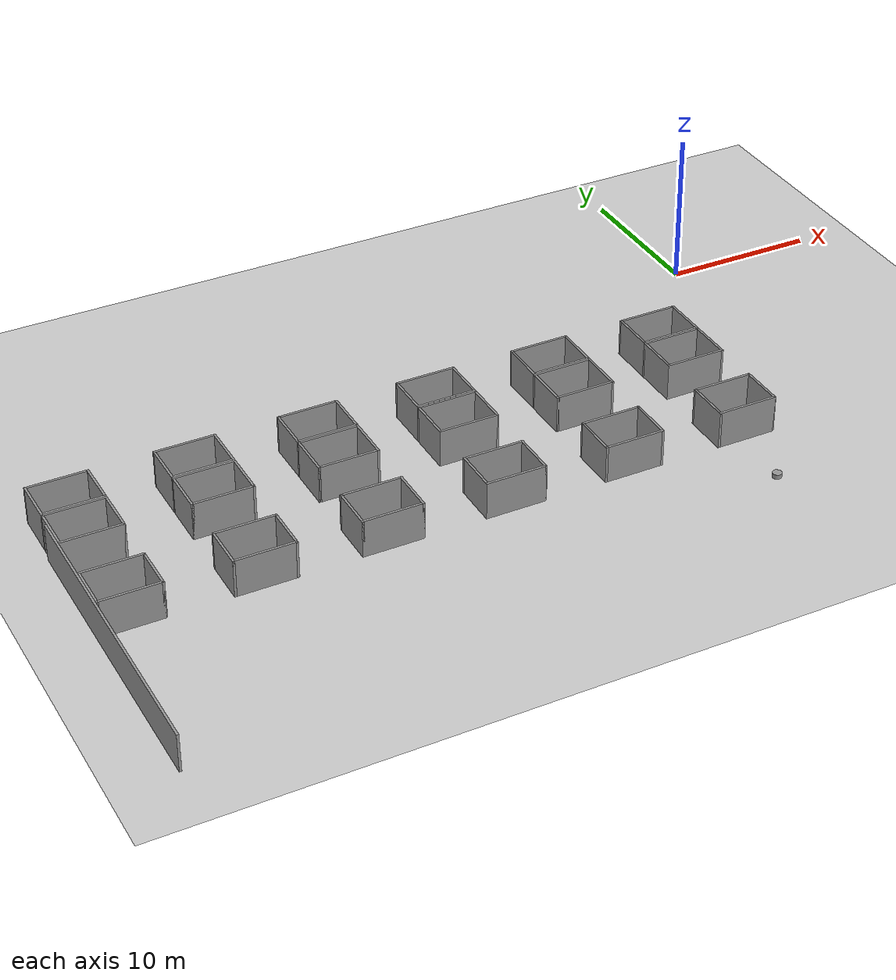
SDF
<sdf version="1.6">
 <world name="default">
  <model name="ground_plane">
   <static>1</static>
   <link name="link">
    <collision name="collision">
     <geometry><plane><normal>0 0 1</normal><size>105 105</size></plane></geometry>
     <surface>
      <contact><collide_bitmask>65535</collide_bitmask></contact>
      <friction><ode><mu>100</mu><mu2>50</mu2></ode></friction>
     </surface>
    </collision>
    <visual name="visual">
     <cast_shadows>0</cast_shadows>
     <geometry><plane><normal>0 0 1</normal><size>105 105</size></plane></geometry>
     <material>
      <script><uri>file://media/materials/scripts/gazebo.material</uri><name>Gazebo/Grey</name></script>
     </material>
    </visual>
   </link>
  </model>
  <model name="wall_v20m">
   <pose>-48.4198 -20.7165 0 0 -0 0</pose>
   <link name="Wall_35">
    <collision name="Wall_35_Collision">
     <geometry><box><size>20 0.15 2.5</size></box></geometry>
     <pose>0 0 1.25 0 -0 0</pose>
    </collision>
    <visual name="Wall_35_Visual">
     <pose>0 0 1.25 0 -0 0</pose>
     <geometry><box><size>20 0.15 2.5</size></box></geometry>
     <material>
      <script><uri>file://media/materials/scripts/gazebo.material</uri><name>Gazebo/Grey</name></script>
      <ambient>1 1 1 1</ambient>
     </material>
     <meta><layer>0</layer></meta>
    </visual>
    <pose>0 -0 0 0 -0 -1.5708</pose>
   </link>
   <static>1</static>
  </model>
  <model name="base3x4_28">
   <pose>-46.3508 -17.215 0 0 -0 0</pose>
   <link name="Wall_18">
    <collision name="Wall_18_Collision">
     <geometry><box><size>3 0.15 2.5</size></box></geometry>
     <pose>0 0 1.25 0 -0 0</pose>
    </collision>
    <visual name="Wall_18_Visual">
     <pose>0 0 1.25 0 -0 0</pose>
     <geometry><box><size>3 0.15 2.5</size></box></geometry>
     <material>
      <script><uri>file://media/materials/scripts/gazebo.material</uri><name>Gazebo/Grey</name></script>
      <ambient>1 1 1 1</ambient>
     </material>
     <meta><layer>0</layer></meta>
    </visual>
    <pose>-1.925 -0 0 0 -0 -1.5708</pose>
   </link>
   <link name="Wall_19">
    <collision name="Wall_19_Collision">
     <geometry><box><size>4 0.15 2.5</size></box></geometry>
     <pose>0 0 1.25 0 -0 0</pose>
    </collision>
    <visual name="Wall_19_Visual">
     <pose>0 0 1.25 0 -0 0</pose>
     <geometry><box><size>4 0.15 2.5</size></box></geometry>
     <material>
      <script><uri>file://media/materials/scripts/gazebo.material</uri><name>Gazebo/Grey</name></script>
      <ambient>1 1 1 1</ambient>
     </material>
     <meta><layer>0</layer></meta>
    </visual>
    <pose>-0 -1.425 0 0 -0 0</pose>
   </link>
   <link name="Wall_20">
    <collision name="Wall_20_Collision">
     <geometry><box><size>3 0.15 2.5</size></box></geometry>
     <pose>0 0 1.25 0 -0 0</pose>
    </collision>
    <visual name="Wall_20_Visual">
     <pose>0 0 1.25 0 -0 0</pose>
     <geometry><box><size>3 0.15 2.5</size></box></geometry>
     <material>
      <script><uri>file://media/materials/scripts/gazebo.material</uri><name>Gazebo/Grey</name></script>
      <ambient>1 1 1 1</ambient>
     </material>
     <meta><layer>0</layer></meta>
    </visual>
    <pose>1.925 -0 0 0 -0 1.5708</pose>
   </link>
   <link name="Wall_21">
    <collision name="Wall_21_Collision">
     <geometry><box><size>4 0.15 2.5</size></box></geometry>
     <pose>0 0 1.25 0 -0 0</pose>
    </collision>
    <visual name="Wall_21_Visual">
     <pose>0 0 1.25 0 -0 0</pose>
     <geometry><box><size>4 0.15 2.5</size></box></geometry>
     <material>
      <script><uri>file://media/materials/scripts/gazebo.material</uri><name>Gazebo/Grey</name></script>
      <ambient>1 1 1 1</ambient>
     </material>
     <meta><layer>0</layer></meta>
    </visual>
    <pose>-0 1.425 0 0 -0 3.14159</pose>
   </link>
   <static>1</static>
  </model>
  <model name="base3x4_36">
   <pose>-38.357 -17.2543 0 0 -0 0</pose>
   <link name="Wall_18">
    <collision name="Wall_18_Collision">
     <geometry><box><size>3 0.15 2.5</size></box></geometry>
     <pose>0 0 1.25 0 -0 0</pose>
    </collision>
    <visual name="Wall_18_Visual">
     <pose>0 0 1.25 0 -0 0</pose>
     <geometry><box><size>3 0.15 2.5</size></box></geometry>
     <material>
      <script><uri>file://media/materials/scripts/gazebo.material</uri><name>Gazebo/Grey</name></script>
      <ambient>1 1 1 1</ambient>
     </material>
     <meta><layer>0</layer></meta>
    </visual>
    <pose>-1.925 -0 0 0 -0 -1.5708</pose>
   </link>
   <link name="Wall_19">
    <collision name="Wall_19_Collision">
     <geometry><box><size>4 0.15 2.5</size></box></geometry>
     <pose>0 0 1.25 0 -0 0</pose>
    </collision>
    <visual name="Wall_19_Visual">
     <pose>0 0 1.25 0 -0 0</pose>
     <geometry><box><size>4 0.15 2.5</size></box></geometry>
     <material>
      <script><uri>file://media/materials/scripts/gazebo.material</uri><name>Gazebo/Grey</name></script>
      <ambient>1 1 1 1</ambient>
     </material>
     <meta><layer>0</layer></meta>
    </visual>
    <pose>-0 -1.425 0 0 -0 0</pose>
   </link>
   <link name="Wall_20">
    <collision name="Wall_20_Collision">
     <geometry><box><size>3 0.15 2.5</size></box></geometry>
     <pose>0 0 1.25 0 -0 0</pose>
    </collision>
    <visual name="Wall_20_Visual">
     <pose>0 0 1.25 0 -0 0</pose>
     <geometry><box><size>3 0.15 2.5</size></box></geometry>
     <material>
      <script><uri>file://media/materials/scripts/gazebo.material</uri><name>Gazebo/Grey</name></script>
      <ambient>1 1 1 1</ambient>
     </material>
     <meta><layer>0</layer></meta>
    </visual>
    <pose>1.925 -0 0 0 -0 1.5708</pose>
   </link>
   <link name="Wall_21">
    <collision name="Wall_21_Collision">
     <geometry><box><size>4 0.15 2.5</size></box></geometry>
     <pose>0 0 1.25 0 -0 0</pose>
    </collision>
    <visual name="Wall_21_Visual">
     <pose>0 0 1.25 0 -0 0</pose>
     <geometry><box><size>4 0.15 2.5</size></box></geometry>
     <material>
      <script><uri>file://media/materials/scripts/gazebo.material</uri><name>Gazebo/Grey</name></script>
      <ambient>1 1 1 1</ambient>
     </material>
     <meta><layer>0</layer></meta>
    </visual>
    <pose>-0 1.425 0 0 -0 3.14159</pose>
   </link>
   <static>1</static>
  </model>
  <model name="base3x4_33">
   <pose>-30.4092 -17.2319 0 0 -0 0</pose>
   <link name="Wall_18">
    <collision name="Wall_18_Collision">
     <geometry><box><size>3 0.15 2.5</size></box></geometry>
     <pose>0 0 1.25 0 -0 0</pose>
    </collision>
    <visual name="Wall_18_Visual">
     <pose>0 0 1.25 0 -0 0</pose>
     <geometry><box><size>3 0.15 2.5</size></box></geometry>
     <material>
      <script><uri>file://media/materials/scripts/gazebo.material</uri><name>Gazebo/Grey</name></script>
      <ambient>1 1 1 1</ambient>
     </material>
     <meta><layer>0</layer></meta>
    </visual>
    <pose>-1.925 -0 0 0 -0 -1.5708</pose>
   </link>
   <link name="Wall_19">
    <collision name="Wall_19_Collision">
     <geometry><box><size>4 0.15 2.5</size></box></geometry>
     <pose>0 0 1.25 0 -0 0</pose>
    </collision>
    <visual name="Wall_19_Visual">
     <pose>0 0 1.25 0 -0 0</pose>
     <geometry><box><size>4 0.15 2.5</size></box></geometry>
     <material>
      <script><uri>file://media/materials/scripts/gazebo.material</uri><name>Gazebo/Grey</name></script>
      <ambient>1 1 1 1</ambient>
     </material>
     <meta><layer>0</layer></meta>
    </visual>
    <pose>-0 -1.425 0 0 -0 0</pose>
   </link>
   <link name="Wall_20">
    <collision name="Wall_20_Collision">
     <geometry><box><size>3 0.15 2.5</size></box></geometry>
     <pose>0 0 1.25 0 -0 0</pose>
    </collision>
    <visual name="Wall_20_Visual">
     <pose>0 0 1.25 0 -0 0</pose>
     <geometry><box><size>3 0.15 2.5</size></box></geometry>
     <material>
      <script><uri>file://media/materials/scripts/gazebo.material</uri><name>Gazebo/Grey</name></script>
      <ambient>1 1 1 1</ambient>
     </material>
     <meta><layer>0</layer></meta>
    </visual>
    <pose>1.925 -0 0 0 -0 1.5708</pose>
   </link>
   <link name="Wall_21">
    <collision name="Wall_21_Collision">
     <geometry><box><size>4 0.15 2.5</size></box></geometry>
     <pose>0 0 1.25 0 -0 0</pose>
    </collision>
    <visual name="Wall_21_Visual">
     <pose>0 0 1.25 0 -0 0</pose>
     <geometry><box><size>4 0.15 2.5</size></box></geometry>
     <material>
      <script><uri>file://media/materials/scripts/gazebo.material</uri><name>Gazebo/Grey</name></script>
      <ambient>1 1 1 1</ambient>
     </material>
     <meta><layer>0</layer></meta>
    </visual>
    <pose>-0 1.425 0 0 -0 3.14159</pose>
   </link>
   <static>1</static>
  </model>
  <model name="base3x4_39">
   <pose>-46.3493 -11.2283 0 0 -0 0</pose>
   <link name="Wall_18">
    <collision name="Wall_18_Collision">
     <geometry><box><size>3 0.15 2.5</size></box></geometry>
     <pose>0 0 1.25 0 -0 0</pose>
    </collision>
    <visual name="Wall_18_Visual">
     <pose>0 0 1.25 0 -0 0</pose>
     <geometry><box><size>3 0.15 2.5</size></box></geometry>
     <material>
      <script><uri>file://media/materials/scripts/gazebo.material</uri><name>Gazebo/Grey</name></script>
      <ambient>1 1 1 1</ambient>
     </material>
     <meta><layer>0</layer></meta>
    </visual>
    <pose>-1.925 -0 0 0 -0 -1.5708</pose>
   </link>
   <link name="Wall_19">
    <collision name="Wall_19_Collision">
     <geometry><box><size>4 0.15 2.5</size></box></geometry>
     <pose>0 0 1.25 0 -0 0</pose>
    </collision>
    <visual name="Wall_19_Visual">
     <pose>0 0 1.25 0 -0 0</pose>
     <geometry><box><size>4 0.15 2.5</size></box></geometry>
     <material>
      <script><uri>file://media/materials/scripts/gazebo.material</uri><name>Gazebo/Grey</name></script>
      <ambient>1 1 1 1</ambient>
     </material>
     <meta><layer>0</layer></meta>
    </visual>
    <pose>-0 -1.425 0 0 -0 0</pose>
   </link>
   <link name="Wall_20">
    <collision name="Wall_20_Collision">
     <geometry><box><size>3 0.15 2.5</size></box></geometry>
     <pose>0 0 1.25 0 -0 0</pose>
    </collision>
    <visual name="Wall_20_Visual">
     <pose>0 0 1.25 0 -0 0</pose>
     <geometry><box><size>3 0.15 2.5</size></box></geometry>
     <material>
      <script><uri>file://media/materials/scripts/gazebo.material</uri><name>Gazebo/Grey</name></script>
      <ambient>1 1 1 1</ambient>
     </material>
     <meta><layer>0</layer></meta>
    </visual>
    <pose>1.925 -0 0 0 -0 1.5708</pose>
   </link>
   <link name="Wall_21">
    <collision name="Wall_21_Collision">
     <geometry><box><size>4 0.15 2.5</size></box></geometry>
     <pose>0 0 1.25 0 -0 0</pose>
    </collision>
    <visual name="Wall_21_Visual">
     <pose>0 0 1.25 0 -0 0</pose>
     <geometry><box><size>4 0.15 2.5</size></box></geometry>
     <material>
      <script><uri>file://media/materials/scripts/gazebo.material</uri><name>Gazebo/Grey</name></script>
      <ambient>1 1 1 1</ambient>
     </material>
     <meta><layer>0</layer></meta>
    </visual>
    <pose>-0 1.425 0 0 -0 3.14159</pose>
   </link>
   <static>1</static>
  </model>
  <model name="base3x4_40">
   <pose>-46.3508 -8.23033 0 0 -0 0</pose>
   <link name="Wall_18">
    <collision name="Wall_18_Collision">
     <geometry><box><size>3 0.15 2.5</size></box></geometry>
     <pose>0 0 1.25 0 -0 0</pose>
    </collision>
    <visual name="Wall_18_Visual">
     <pose>0 0 1.25 0 -0 0</pose>
     <geometry><box><size>3 0.15 2.5</size></box></geometry>
     <material>
      <script><uri>file://media/materials/scripts/gazebo.material</uri><name>Gazebo/Grey</name></script>
      <ambient>1 1 1 1</ambient>
     </material>
     <meta><layer>0</layer></meta>
    </visual>
    <pose>-1.925 -0 0 0 -0 -1.5708</pose>
   </link>
   <link name="Wall_19">
    <collision name="Wall_19_Collision">
     <geometry><box><size>4 0.15 2.5</size></box></geometry>
     <pose>0 0 1.25 0 -0 0</pose>
    </collision>
    <visual name="Wall_19_Visual">
     <pose>0 0 1.25 0 -0 0</pose>
     <geometry><box><size>4 0.15 2.5</size></box></geometry>
     <material>
      <script><uri>file://media/materials/scripts/gazebo.material</uri><name>Gazebo/Grey</name></script>
      <ambient>1 1 1 1</ambient>
     </material>
     <meta><layer>0</layer></meta>
    </visual>
    <pose>-0 -1.425 0 0 -0 0</pose>
   </link>
   <link name="Wall_20">
    <collision name="Wall_20_Collision">
     <geometry><box><size>3 0.15 2.5</size></box></geometry>
     <pose>0 0 1.25 0 -0 0</pose>
    </collision>
    <visual name="Wall_20_Visual">
     <pose>0 0 1.25 0 -0 0</pose>
     <geometry><box><size>3 0.15 2.5</size></box></geometry>
     <material>
      <script><uri>file://media/materials/scripts/gazebo.material</uri><name>Gazebo/Grey</name></script>
      <ambient>1 1 1 1</ambient>
     </material>
     <meta><layer>0</layer></meta>
    </visual>
    <pose>1.925 -0 0 0 -0 1.5708</pose>
   </link>
   <link name="Wall_21">
    <collision name="Wall_21_Collision">
     <geometry><box><size>4 0.15 2.5</size></box></geometry>
     <pose>0 0 1.25 0 -0 0</pose>
    </collision>
    <visual name="Wall_21_Visual">
     <pose>0 0 1.25 0 -0 0</pose>
     <geometry><box><size>4 0.15 2.5</size></box></geometry>
     <material>
      <script><uri>file://media/materials/scripts/gazebo.material</uri><name>Gazebo/Grey</name></script>
      <ambient>1 1 1 1</ambient>
     </material>
     <meta><layer>0</layer></meta>
    </visual>
    <pose>-0 1.425 0 0 -0 3.14159</pose>
   </link>
   <static>1</static>
  </model>
  <model name="base3x4_59">
   <pose>-38.3726 -11.2428 0 0 -0 0</pose>
   <link name="Wall_18">
    <collision name="Wall_18_Collision">
     <geometry><box><size>3 0.15 2.5</size></box></geometry>
     <pose>0 0 1.25 0 -0 0</pose>
    </collision>
    <visual name="Wall_18_Visual">
     <pose>0 0 1.25 0 -0 0</pose>
     <geometry><box><size>3 0.15 2.5</size></box></geometry>
     <material>
      <script><uri>file://media/materials/scripts/gazebo.material</uri><name>Gazebo/Grey</name></script>
      <ambient>1 1 1 1</ambient>
     </material>
     <meta><layer>0</layer></meta>
    </visual>
    <pose>-1.925 -0 0 0 -0 -1.5708</pose>
   </link>
   <link name="Wall_19">
    <collision name="Wall_19_Collision">
     <geometry><box><size>4 0.15 2.5</size></box></geometry>
     <pose>0 0 1.25 0 -0 0</pose>
    </collision>
    <visual name="Wall_19_Visual">
     <pose>0 0 1.25 0 -0 0</pose>
     <geometry><box><size>4 0.15 2.5</size></box></geometry>
     <material>
      <script><uri>file://media/materials/scripts/gazebo.material</uri><name>Gazebo/Grey</name></script>
      <ambient>1 1 1 1</ambient>
     </material>
     <meta><layer>0</layer></meta>
    </visual>
    <pose>-0 -1.425 0 0 -0 0</pose>
   </link>
   <link name="Wall_20">
    <collision name="Wall_20_Collision">
     <geometry><box><size>3 0.15 2.5</size></box></geometry>
     <pose>0 0 1.25 0 -0 0</pose>
    </collision>
    <visual name="Wall_20_Visual">
     <pose>0 0 1.25 0 -0 0</pose>
     <geometry><box><size>3 0.15 2.5</size></box></geometry>
     <material>
      <script><uri>file://media/materials/scripts/gazebo.material</uri><name>Gazebo/Grey</name></script>
      <ambient>1 1 1 1</ambient>
     </material>
     <meta><layer>0</layer></meta>
    </visual>
    <pose>1.925 -0 0 0 -0 1.5708</pose>
   </link>
   <link name="Wall_21">
    <collision name="Wall_21_Collision">
     <geometry><box><size>4 0.15 2.5</size></box></geometry>
     <pose>0 0 1.25 0 -0 0</pose>
    </collision>
    <visual name="Wall_21_Visual">
     <pose>0 0 1.25 0 -0 0</pose>
     <geometry><box><size>4 0.15 2.5</size></box></geometry>
     <material>
      <script><uri>file://media/materials/scripts/gazebo.material</uri><name>Gazebo/Grey</name></script>
      <ambient>1 1 1 1</ambient>
     </material>
     <meta><layer>0</layer></meta>
    </visual>
    <pose>-0 1.425 0 0 -0 3.14159</pose>
   </link>
   <static>1</static>
  </model>
  <model name="base3x4_60">
   <pose>-38.3722 -8.24435 0 0 -0 0</pose>
   <link name="Wall_18">
    <collision name="Wall_18_Collision">
     <geometry><box><size>3 0.15 2.5</size></box></geometry>
     <pose>0 0 1.25 0 -0 0</pose>
    </collision>
    <visual name="Wall_18_Visual">
     <pose>0 0 1.25 0 -0 0</pose>
     <geometry><box><size>3 0.15 2.5</size></box></geometry>
     <material>
      <script><uri>file://media/materials/scripts/gazebo.material</uri><name>Gazebo/Grey</name></script>
      <ambient>1 1 1 1</ambient>
     </material>
     <meta><layer>0</layer></meta>
    </visual>
    <pose>-1.925 -0 0 0 -0 -1.5708</pose>
   </link>
   <link name="Wall_19">
    <collision name="Wall_19_Collision">
     <geometry><box><size>4 0.15 2.5</size></box></geometry>
     <pose>0 0 1.25 0 -0 0</pose>
    </collision>
    <visual name="Wall_19_Visual">
     <pose>0 0 1.25 0 -0 0</pose>
     <geometry><box><size>4 0.15 2.5</size></box></geometry>
     <material>
      <script><uri>file://media/materials/scripts/gazebo.material</uri><name>Gazebo/Grey</name></script>
      <ambient>1 1 1 1</ambient>
     </material>
     <meta><layer>0</layer></meta>
    </visual>
    <pose>-0 -1.425 0 0 -0 0</pose>
   </link>
   <link name="Wall_20">
    <collision name="Wall_20_Collision">
     <geometry><box><size>3 0.15 2.5</size></box></geometry>
     <pose>0 0 1.25 0 -0 0</pose>
    </collision>
    <visual name="Wall_20_Visual">
     <pose>0 0 1.25 0 -0 0</pose>
     <geometry><box><size>3 0.15 2.5</size></box></geometry>
     <material>
      <script><uri>file://media/materials/scripts/gazebo.material</uri><name>Gazebo/Grey</name></script>
      <ambient>1 1 1 1</ambient>
     </material>
     <meta><layer>0</layer></meta>
    </visual>
    <pose>1.925 -0 0 0 -0 1.5708</pose>
   </link>
   <link name="Wall_21">
    <collision name="Wall_21_Collision">
     <geometry><box><size>4 0.15 2.5</size></box></geometry>
     <pose>0 0 1.25 0 -0 0</pose>
    </collision>
    <visual name="Wall_21_Visual">
     <pose>0 0 1.25 0 -0 0</pose>
     <geometry><box><size>4 0.15 2.5</size></box></geometry>
     <material>
      <script><uri>file://media/materials/scripts/gazebo.material</uri><name>Gazebo/Grey</name></script>
      <ambient>1 1 1 1</ambient>
     </material>
     <meta><layer>0</layer></meta>
    </visual>
    <pose>-0 1.425 0 0 -0 3.14159</pose>
   </link>
   <static>1</static>
  </model>
  <model name="base3x4_0">
   <pose>-30.4026 -11.2715 0 0 -0 0</pose>
   <link name="Wall_18">
    <collision name="Wall_18_Collision">
     <geometry><box><size>3 0.15 2.5</size></box></geometry>
     <pose>0 0 1.25 0 -0 0</pose>
    </collision>
    <visual name="Wall_18_Visual">
     <pose>0 0 1.25 0 -0 0</pose>
     <geometry><box><size>3 0.15 2.5</size></box></geometry>
     <material>
      <script><uri>file://media/materials/scripts/gazebo.material</uri><name>Gazebo/Grey</name></script>
      <ambient>1 1 1 1</ambient>
     </material>
     <meta><layer>0</layer></meta>
    </visual>
    <pose>-1.925 -0 0 0 -0 -1.5708</pose>
   </link>
   <link name="Wall_19">
    <collision name="Wall_19_Collision">
     <geometry><box><size>4 0.15 2.5</size></box></geometry>
     <pose>0 0 1.25 0 -0 0</pose>
    </collision>
    <visual name="Wall_19_Visual">
     <pose>0 0 1.25 0 -0 0</pose>
     <geometry><box><size>4 0.15 2.5</size></box></geometry>
     <material>
      <script><uri>file://media/materials/scripts/gazebo.material</uri><name>Gazebo/Grey</name></script>
      <ambient>1 1 1 1</ambient>
     </material>
     <meta><layer>0</layer></meta>
    </visual>
    <pose>-0 -1.425 0 0 -0 0</pose>
   </link>
   <link name="Wall_20">
    <collision name="Wall_20_Collision">
     <geometry><box><size>3 0.15 2.5</size></box></geometry>
     <pose>0 0 1.25 0 -0 0</pose>
    </collision>
    <visual name="Wall_20_Visual">
     <pose>0 0 1.25 0 -0 0</pose>
     <geometry><box><size>3 0.15 2.5</size></box></geometry>
     <material>
      <script><uri>file://media/materials/scripts/gazebo.material</uri><name>Gazebo/Grey</name></script>
      <ambient>1 1 1 1</ambient>
     </material>
     <meta><layer>0</layer></meta>
    </visual>
    <pose>1.925 -0 0 0 -0 1.5708</pose>
   </link>
   <link name="Wall_21">
    <collision name="Wall_21_Collision">
     <geometry><box><size>4 0.15 2.5</size></box></geometry>
     <pose>0 0 1.25 0 -0 0</pose>
    </collision>
    <visual name="Wall_21_Visual">
     <pose>0 0 1.25 0 -0 0</pose>
     <geometry><box><size>4 0.15 2.5</size></box></geometry>
     <material>
      <script><uri>file://media/materials/scripts/gazebo.material</uri><name>Gazebo/Grey</name></script>
      <ambient>1 1 1 1</ambient>
     </material>
     <meta><layer>0</layer></meta>
    </visual>
    <pose>-0 1.425 0 0 -0 3.14159</pose>
   </link>
   <static>1</static>
  </model>
  <model name="base3x4_2">
   <pose>-30.4005 -8.26913 0 0 -0 0</pose>
   <link name="Wall_18">
    <collision name="Wall_18_Collision">
     <geometry><box><size>3 0.15 2.5</size></box></geometry>
     <pose>0 0 1.25 0 -0 0</pose>
    </collision>
    <visual name="Wall_18_Visual">
     <pose>0 0 1.25 0 -0 0</pose>
     <geometry><box><size>3 0.15 2.5</size></box></geometry>
     <material>
      <script><uri>file://media/materials/scripts/gazebo.material</uri><name>Gazebo/Grey</name></script>
      <ambient>1 1 1 1</ambient>
     </material>
     <meta><layer>0</layer></meta>
    </visual>
    <pose>-1.925 -0 0 0 -0 -1.5708</pose>
   </link>
   <link name="Wall_19">
    <collision name="Wall_19_Collision">
     <geometry><box><size>4 0.15 2.5</size></box></geometry>
     <pose>0 0 1.25 0 -0 0</pose>
    </collision>
    <visual name="Wall_19_Visual">
     <pose>0 0 1.25 0 -0 0</pose>
     <geometry><box><size>4 0.15 2.5</size></box></geometry>
     <material>
      <script><uri>file://media/materials/scripts/gazebo.material</uri><name>Gazebo/Grey</name></script>
      <ambient>1 1 1 1</ambient>
     </material>
     <meta><layer>0</layer></meta>
    </visual>
    <pose>-0 -1.425 0 0 -0 0</pose>
   </link>
   <link name="Wall_20">
    <collision name="Wall_20_Collision">
     <geometry><box><size>3 0.15 2.5</size></box></geometry>
     <pose>0 0 1.25 0 -0 0</pose>
    </collision>
    <visual name="Wall_20_Visual">
     <pose>0 0 1.25 0 -0 0</pose>
     <geometry><box><size>3 0.15 2.5</size></box></geometry>
     <material>
      <script><uri>file://media/materials/scripts/gazebo.material</uri><name>Gazebo/Grey</name></script>
      <ambient>1 1 1 1</ambient>
     </material>
     <meta><layer>0</layer></meta>
    </visual>
    <pose>1.925 -0 0 0 -0 1.5708</pose>
   </link>
   <link name="Wall_21">
    <collision name="Wall_21_Collision">
     <geometry><box><size>4 0.15 2.5</size></box></geometry>
     <pose>0 0 1.25 0 -0 0</pose>
    </collision>
    <visual name="Wall_21_Visual">
     <pose>0 0 1.25 0 -0 0</pose>
     <geometry><box><size>4 0.15 2.5</size></box></geometry>
     <material>
      <script><uri>file://media/materials/scripts/gazebo.material</uri><name>Gazebo/Grey</name></script>
      <ambient>1 1 1 1</ambient>
     </material>
     <meta><layer>0</layer></meta>
    </visual>
    <pose>-0 1.425 0 0 -0 3.14159</pose>
   </link>
   <static>1</static>
  </model>
  <model name="base3x4_61">
   <pose>-22.4078 -17.2215 0 0 -0 0</pose>
   <link name="Wall_18">
    <collision name="Wall_18_Collision">
     <geometry><box><size>3 0.15 2.5</size></box></geometry>
     <pose>0 0 1.25 0 -0 0</pose>
    </collision>
    <visual name="Wall_18_Visual">
     <pose>0 0 1.25 0 -0 0</pose>
     <geometry><box><size>3 0.15 2.5</size></box></geometry>
     <material>
      <script><uri>file://media/materials/scripts/gazebo.material</uri><name>Gazebo/Grey</name></script>
      <ambient>1 1 1 1</ambient>
     </material>
     <meta><layer>0</layer></meta>
    </visual>
    <pose>-1.925 -0 0 0 -0 -1.5708</pose>
   </link>
   <link name="Wall_19">
    <collision name="Wall_19_Collision">
     <geometry><box><size>4 0.15 2.5</size></box></geometry>
     <pose>0 0 1.25 0 -0 0</pose>
    </collision>
    <visual name="Wall_19_Visual">
     <pose>0 0 1.25 0 -0 0</pose>
     <geometry><box><size>4 0.15 2.5</size></box></geometry>
     <material>
      <script><uri>file://media/materials/scripts/gazebo.material</uri><name>Gazebo/Grey</name></script>
      <ambient>1 1 1 1</ambient>
     </material>
     <meta><layer>0</layer></meta>
    </visual>
    <pose>-0 -1.425 0 0 -0 0</pose>
   </link>
   <link name="Wall_20">
    <collision name="Wall_20_Collision">
     <geometry><box><size>3 0.15 2.5</size></box></geometry>
     <pose>0 0 1.25 0 -0 0</pose>
    </collision>
    <visual name="Wall_20_Visual">
     <pose>0 0 1.25 0 -0 0</pose>
     <geometry><box><size>3 0.15 2.5</size></box></geometry>
     <material>
      <script><uri>file://media/materials/scripts/gazebo.material</uri><name>Gazebo/Grey</name></script>
      <ambient>1 1 1 1</ambient>
     </material>
     <meta><layer>0</layer></meta>
    </visual>
    <pose>1.925 -0 0 0 -0 1.5708</pose>
   </link>
   <link name="Wall_21">
    <collision name="Wall_21_Collision">
     <geometry><box><size>4 0.15 2.5</size></box></geometry>
     <pose>0 0 1.25 0 -0 0</pose>
    </collision>
    <visual name="Wall_21_Visual">
     <pose>0 0 1.25 0 -0 0</pose>
     <geometry><box><size>4 0.15 2.5</size></box></geometry>
     <material>
      <script><uri>file://media/materials/scripts/gazebo.material</uri><name>Gazebo/Grey</name></script>
      <ambient>1 1 1 1</ambient>
     </material>
     <meta><layer>0</layer></meta>
    </visual>
    <pose>-0 1.425 0 0 -0 3.14159</pose>
   </link>
   <static>1</static>
  </model>
  <model name="base3x4_67">
   <pose>-22.4088 -11.219 0 0 -0 0</pose>
   <link name="Wall_18">
    <collision name="Wall_18_Collision">
     <geometry><box><size>3 0.15 2.5</size></box></geometry>
     <pose>0 0 1.25 0 -0 0</pose>
    </collision>
    <visual name="Wall_18_Visual">
     <pose>0 0 1.25 0 -0 0</pose>
     <geometry><box><size>3 0.15 2.5</size></box></geometry>
     <material>
      <script><uri>file://media/materials/scripts/gazebo.material</uri><name>Gazebo/Grey</name></script>
      <ambient>1 1 1 1</ambient>
     </material>
     <meta><layer>0</layer></meta>
    </visual>
    <pose>-1.925 -0 0 0 -0 -1.5708</pose>
   </link>
   <link name="Wall_19">
    <collision name="Wall_19_Collision">
     <geometry><box><size>4 0.15 2.5</size></box></geometry>
     <pose>0 0 1.25 0 -0 0</pose>
    </collision>
    <visual name="Wall_19_Visual">
     <pose>0 0 1.25 0 -0 0</pose>
     <geometry><box><size>4 0.15 2.5</size></box></geometry>
     <material>
      <script><uri>file://media/materials/scripts/gazebo.material</uri><name>Gazebo/Grey</name></script>
      <ambient>1 1 1 1</ambient>
     </material>
     <meta><layer>0</layer></meta>
    </visual>
    <pose>-0 -1.425 0 0 -0 0</pose>
   </link>
   <link name="Wall_20">
    <collision name="Wall_20_Collision">
     <geometry><box><size>3 0.15 2.5</size></box></geometry>
     <pose>0 0 1.25 0 -0 0</pose>
    </collision>
    <visual name="Wall_20_Visual">
     <pose>0 0 1.25 0 -0 0</pose>
     <geometry><box><size>3 0.15 2.5</size></box></geometry>
     <material>
      <script><uri>file://media/materials/scripts/gazebo.material</uri><name>Gazebo/Grey</name></script>
      <ambient>1 1 1 1</ambient>
     </material>
     <meta><layer>0</layer></meta>
    </visual>
    <pose>1.925 -0 0 0 -0 1.5708</pose>
   </link>
   <link name="Wall_21">
    <collision name="Wall_21_Collision">
     <geometry><box><size>4 0.15 2.5</size></box></geometry>
     <pose>0 0 1.25 0 -0 0</pose>
    </collision>
    <visual name="Wall_21_Visual">
     <pose>0 0 1.25 0 -0 0</pose>
     <geometry><box><size>4 0.15 2.5</size></box></geometry>
     <material>
      <script><uri>file://media/materials/scripts/gazebo.material</uri><name>Gazebo/Grey</name></script>
      <ambient>1 1 1 1</ambient>
     </material>
     <meta><layer>0</layer></meta>
    </visual>
    <pose>-0 1.425 0 0 -0 3.14159</pose>
   </link>
   <static>1</static>
  </model>
  <model name="base3x4_68">
   <pose>-22.41 -8.21789 0 0 -0 0</pose>
   <link name="Wall_18">
    <collision name="Wall_18_Collision">
     <geometry><box><size>3 0.15 2.5</size></box></geometry>
     <pose>0 0 1.25 0 -0 0</pose>
    </collision>
    <visual name="Wall_18_Visual">
     <pose>0 0 1.25 0 -0 0</pose>
     <geometry><box><size>3 0.15 2.5</size></box></geometry>
     <material>
      <script><uri>file://media/materials/scripts/gazebo.material</uri><name>Gazebo/Grey</name></script>
      <ambient>1 1 1 1</ambient>
     </material>
     <meta><layer>0</layer></meta>
    </visual>
    <pose>-1.925 -0 0 0 -0 -1.5708</pose>
   </link>
   <link name="Wall_19">
    <collision name="Wall_19_Collision">
     <geometry><box><size>4 0.15 2.5</size></box></geometry>
     <pose>0 0 1.25 0 -0 0</pose>
    </collision>
    <visual name="Wall_19_Visual">
     <pose>0 0 1.25 0 -0 0</pose>
     <geometry><box><size>4 0.15 2.5</size></box></geometry>
     <material>
      <script><uri>file://media/materials/scripts/gazebo.material</uri><name>Gazebo/Grey</name></script>
      <ambient>1 1 1 1</ambient>
     </material>
     <meta><layer>0</layer></meta>
    </visual>
    <pose>-0 -1.425 0 0 -0 0</pose>
   </link>
   <link name="Wall_20">
    <collision name="Wall_20_Collision">
     <geometry><box><size>3 0.15 2.5</size></box></geometry>
     <pose>0 0 1.25 0 -0 0</pose>
    </collision>
    <visual name="Wall_20_Visual">
     <pose>0 0 1.25 0 -0 0</pose>
     <geometry><box><size>3 0.15 2.5</size></box></geometry>
     <material>
      <script><uri>file://media/materials/scripts/gazebo.material</uri><name>Gazebo/Grey</name></script>
      <ambient>1 1 1 1</ambient>
     </material>
     <meta><layer>0</layer></meta>
    </visual>
    <pose>1.925 -0 0 0 -0 1.5708</pose>
   </link>
   <link name="Wall_21">
    <collision name="Wall_21_Collision">
     <geometry><box><size>4 0.15 2.5</size></box></geometry>
     <pose>0 0 1.25 0 -0 0</pose>
    </collision>
    <visual name="Wall_21_Visual">
     <pose>0 0 1.25 0 -0 0</pose>
     <geometry><box><size>4 0.15 2.5</size></box></geometry>
     <material>
      <script><uri>file://media/materials/scripts/gazebo.material</uri><name>Gazebo/Grey</name></script>
      <ambient>1 1 1 1</ambient>
     </material>
     <meta><layer>0</layer></meta>
    </visual>
    <pose>-0 1.425 0 0 -0 3.14159</pose>
   </link>
   <static>1</static>
  </model>
  <model name="base3x4_72">
   <pose>-14.4176 -17.2389 0 0 -0 0</pose>
   <link name="Wall_18">
    <collision name="Wall_18_Collision">
     <geometry><box><size>3 0.15 2.5</size></box></geometry>
     <pose>0 0 1.25 0 -0 0</pose>
    </collision>
    <visual name="Wall_18_Visual">
     <pose>0 0 1.25 0 -0 0</pose>
     <geometry><box><size>3 0.15 2.5</size></box></geometry>
     <material>
      <script><uri>file://media/materials/scripts/gazebo.material</uri><name>Gazebo/Grey</name></script>
      <ambient>1 1 1 1</ambient>
     </material>
     <meta><layer>0</layer></meta>
    </visual>
    <pose>-1.925 -0 0 0 -0 -1.5708</pose>
   </link>
   <link name="Wall_19">
    <collision name="Wall_19_Collision">
     <geometry><box><size>4 0.15 2.5</size></box></geometry>
     <pose>0 0 1.25 0 -0 0</pose>
    </collision>
    <visual name="Wall_19_Visual">
     <pose>0 0 1.25 0 -0 0</pose>
     <geometry><box><size>4 0.15 2.5</size></box></geometry>
     <material>
      <script><uri>file://media/materials/scripts/gazebo.material</uri><name>Gazebo/Grey</name></script>
      <ambient>1 1 1 1</ambient>
     </material>
     <meta><layer>0</layer></meta>
    </visual>
    <pose>-0 -1.425 0 0 -0 0</pose>
   </link>
   <link name="Wall_20">
    <collision name="Wall_20_Collision">
     <geometry><box><size>3 0.15 2.5</size></box></geometry>
     <pose>0 0 1.25 0 -0 0</pose>
    </collision>
    <visual name="Wall_20_Visual">
     <pose>0 0 1.25 0 -0 0</pose>
     <geometry><box><size>3 0.15 2.5</size></box></geometry>
     <material>
      <script><uri>file://media/materials/scripts/gazebo.material</uri><name>Gazebo/Grey</name></script>
      <ambient>1 1 1 1</ambient>
     </material>
     <meta><layer>0</layer></meta>
    </visual>
    <pose>1.925 -0 0 0 -0 1.5708</pose>
   </link>
   <link name="Wall_21">
    <collision name="Wall_21_Collision">
     <geometry><box><size>4 0.15 2.5</size></box></geometry>
     <pose>0 0 1.25 0 -0 0</pose>
    </collision>
    <visual name="Wall_21_Visual">
     <pose>0 0 1.25 0 -0 0</pose>
     <geometry><box><size>4 0.15 2.5</size></box></geometry>
     <material>
      <script><uri>file://media/materials/scripts/gazebo.material</uri><name>Gazebo/Grey</name></script>
      <ambient>1 1 1 1</ambient>
     </material>
     <meta><layer>0</layer></meta>
    </visual>
    <pose>-0 1.425 0 0 -0 3.14159</pose>
   </link>
   <static>1</static>
  </model>
  <model name="base3x4_75">
   <pose>-14.4135 -11.2542 0 0 -0 0</pose>
   <link name="Wall_18">
    <collision name="Wall_18_Collision">
     <geometry><box><size>3 0.15 2.5</size></box></geometry>
     <pose>0 0 1.25 0 -0 0</pose>
    </collision>
    <visual name="Wall_18_Visual">
     <pose>0 0 1.25 0 -0 0</pose>
     <geometry><box><size>3 0.15 2.5</size></box></geometry>
     <material>
      <script><uri>file://media/materials/scripts/gazebo.material</uri><name>Gazebo/Grey</name></script>
      <ambient>1 1 1 1</ambient>
     </material>
     <meta><layer>0</layer></meta>
    </visual>
    <pose>-1.925 -0 0 0 -0 -1.5708</pose>
   </link>
   <link name="Wall_19">
    <collision name="Wall_19_Collision">
     <geometry><box><size>4 0.15 2.5</size></box></geometry>
     <pose>0 0 1.25 0 -0 0</pose>
    </collision>
    <visual name="Wall_19_Visual">
     <pose>0 0 1.25 0 -0 0</pose>
     <geometry><box><size>4 0.15 2.5</size></box></geometry>
     <material>
      <script><uri>file://media/materials/scripts/gazebo.material</uri><name>Gazebo/Grey</name></script>
      <ambient>1 1 1 1</ambient>
     </material>
     <meta><layer>0</layer></meta>
    </visual>
    <pose>-0 -1.425 0 0 -0 0</pose>
   </link>
   <link name="Wall_20">
    <collision name="Wall_20_Collision">
     <geometry><box><size>3 0.15 2.5</size></box></geometry>
     <pose>0 0 1.25 0 -0 0</pose>
    </collision>
    <visual name="Wall_20_Visual">
     <pose>0 0 1.25 0 -0 0</pose>
     <geometry><box><size>3 0.15 2.5</size></box></geometry>
     <material>
      <script><uri>file://media/materials/scripts/gazebo.material</uri><name>Gazebo/Grey</name></script>
      <ambient>1 1 1 1</ambient>
     </material>
     <meta><layer>0</layer></meta>
    </visual>
    <pose>1.925 -0 0 0 -0 1.5708</pose>
   </link>
   <link name="Wall_21">
    <collision name="Wall_21_Collision">
     <geometry><box><size>4 0.15 2.5</size></box></geometry>
     <pose>0 0 1.25 0 -0 0</pose>
    </collision>
    <visual name="Wall_21_Visual">
     <pose>0 0 1.25 0 -0 0</pose>
     <geometry><box><size>4 0.15 2.5</size></box></geometry>
     <material>
      <script><uri>file://media/materials/scripts/gazebo.material</uri><name>Gazebo/Grey</name></script>
      <ambient>1 1 1 1</ambient>
     </material>
     <meta><layer>0</layer></meta>
    </visual>
    <pose>-0 1.425 0 0 -0 3.14159</pose>
   </link>
   <static>1</static>
  </model>
  <model name="base3x4_76">
   <pose>-14.4158 -8.25268 0 0 -0 0</pose>
   <link name="Wall_18">
    <collision name="Wall_18_Collision">
     <geometry><box><size>3 0.15 2.5</size></box></geometry>
     <pose>0 0 1.25 0 -0 0</pose>
    </collision>
    <visual name="Wall_18_Visual">
     <pose>0 0 1.25 0 -0 0</pose>
     <geometry><box><size>3 0.15 2.5</size></box></geometry>
     <material>
      <script><uri>file://media/materials/scripts/gazebo.material</uri><name>Gazebo/Grey</name></script>
      <ambient>1 1 1 1</ambient>
     </material>
     <meta><layer>0</layer></meta>
    </visual>
    <pose>-1.925 -0 0 0 -0 -1.5708</pose>
   </link>
   <link name="Wall_19">
    <collision name="Wall_19_Collision">
     <geometry><box><size>4 0.15 2.5</size></box></geometry>
     <pose>0 0 1.25 0 -0 0</pose>
    </collision>
    <visual name="Wall_19_Visual">
     <pose>0 0 1.25 0 -0 0</pose>
     <geometry><box><size>4 0.15 2.5</size></box></geometry>
     <material>
      <script><uri>file://media/materials/scripts/gazebo.material</uri><name>Gazebo/Grey</name></script>
      <ambient>1 1 1 1</ambient>
     </material>
     <meta><layer>0</layer></meta>
    </visual>
    <pose>-0 -1.425 0 0 -0 0</pose>
   </link>
   <link name="Wall_20">
    <collision name="Wall_20_Collision">
     <geometry><box><size>3 0.15 2.5</size></box></geometry>
     <pose>0 0 1.25 0 -0 0</pose>
    </collision>
    <visual name="Wall_20_Visual">
     <pose>0 0 1.25 0 -0 0</pose>
     <geometry><box><size>3 0.15 2.5</size></box></geometry>
     <material>
      <script><uri>file://media/materials/scripts/gazebo.material</uri><name>Gazebo/Grey</name></script>
      <ambient>1 1 1 1</ambient>
     </material>
     <meta><layer>0</layer></meta>
    </visual>
    <pose>1.925 -0 0 0 -0 1.5708</pose>
   </link>
   <link name="Wall_21">
    <collision name="Wall_21_Collision">
     <geometry><box><size>4 0.15 2.5</size></box></geometry>
     <pose>0 0 1.25 0 -0 0</pose>
    </collision>
    <visual name="Wall_21_Visual">
     <pose>0 0 1.25 0 -0 0</pose>
     <geometry><box><size>4 0.15 2.5</size></box></geometry>
     <material>
      <script><uri>file://media/materials/scripts/gazebo.material</uri><name>Gazebo/Grey</name></script>
      <ambient>1 1 1 1</ambient>
     </material>
     <meta><layer>0</layer></meta>
    </visual>
    <pose>-0 1.425 0 0 -0 3.14159</pose>
   </link>
   <static>1</static>
  </model>
  <model name="unit_cylinder30x30cm_2">
   <link name="link">
    <inertial>
     <mass>1</mass>
     <inertia><ixx>0.145833</ixx><ixy>0</ixy><ixz>0</ixz><iyy>0.145833</iyy><iyz>0</iyz><izz>0.125</izz></inertia>
    </inertial>
    <visual name="visual">
     <geometry><cylinder><radius>0.3</radius><length>0.3</length></cylinder></geometry>
     <material>
      <script><name>Gazebo/Grey</name><uri>file://media/materials/scripts/gazebo.material</uri></script>
      <shader type="vertex"><normal_map>__default__</normal_map></shader>
      <ambient>0.3 0.3 0.3 1</ambient>
      <diffuse>0.7 0.7 0.7 1</diffuse>
      <specular>0.01 0.01 0.01 1</specular>
      <emissive>0 0 0 1</emissive>
     </material>
    </visual>
    <collision name="collision">
     <geometry><cylinder><radius>0.3</radius><length>0.3</length></cylinder></geometry>
     <surface>
      <friction>
       <ode><mu>1</mu><mu2>1</mu2><fdir1>0 0 0</fdir1><slip1>0</slip1><slip2>0</slip2></ode>
       <torsional>
        <coefficient>1</coefficient>
        <patch_radius>0</patch_radius>
        <surface_radius>0</surface_radius>
        <use_patch_radius>1</use_patch_radius>
        <ode><slip>0</slip></ode>
       </torsional>
      </friction>
      <bounce><restitution_coefficient>0</restitution_coefficient><threshold>1e+06</threshold></bounce>
      <contact>
       <collide_without_contact>0</collide_without_contact>
       <collide_without_contact_bitmask>1</collide_without_contact_bitmask>
       <collide_bitmask>1</collide_bitmask>
       <ode>
        <soft_cfm>0</soft_cfm>
        <soft_erp>0.2</soft_erp>
        <kp>1e+13</kp>
        <kd>1</kd>
        <max_vel>0.01</max_vel>
        <min_depth>0</min_depth>
       </ode>
       <bullet>
        <split_impulse>1</split_impulse>
        <split_impulse_penetration_threshold>-0.01</split_impulse_penetration_threshold>
        <soft_cfm>0</soft_cfm>
        <soft_erp>0.2</soft_erp>
        <kp>1e+13</kp>
        <kd>1</kd>
       </bullet>
      </contact>
     </surface>
    </collision>
   </link>
   <static>0</static>
   <pose>-6.96506 -22.9077 0.149981 -0 -0 -0</pose>
  </model>
  <model name="base3x4_52">
   <pose>-6.49511 -17.2522 0 0 -0 0</pose>
   <link name="Wall_18">
    <collision name="Wall_18_Collision">
     <geometry><box><size>3 0.15 2.5</size></box></geometry>
     <pose>0 0 1.25 0 -0 0</pose>
    </collision>
    <visual name="Wall_18_Visual">
     <pose>0 0 1.25 0 -0 0</pose>
     <geometry><box><size>3 0.15 2.5</size></box></geometry>
     <material>
      <script><uri>file://media/materials/scripts/gazebo.material</uri><name>Gazebo/Grey</name></script>
      <ambient>1 1 1 1</ambient>
     </material>
     <meta><layer>0</layer></meta>
    </visual>
    <pose>-1.925 -0 0 0 -0 -1.5708</pose>
   </link>
   <link name="Wall_19">
    <collision name="Wall_19_Collision">
     <geometry><box><size>4 0.15 2.5</size></box></geometry>
     <pose>0 0 1.25 0 -0 0</pose>
    </collision>
    <visual name="Wall_19_Visual">
     <pose>0 0 1.25 0 -0 0</pose>
     <geometry><box><size>4 0.15 2.5</size></box></geometry>
     <material>
      <script><uri>file://media/materials/scripts/gazebo.material</uri><name>Gazebo/Grey</name></script>
      <ambient>1 1 1 1</ambient>
     </material>
     <meta><layer>0</layer></meta>
    </visual>
    <pose>-0 -1.425 0 0 -0 0</pose>
   </link>
   <link name="Wall_20">
    <collision name="Wall_20_Collision">
     <geometry><box><size>3 0.15 2.5</size></box></geometry>
     <pose>0 0 1.25 0 -0 0</pose>
    </collision>
    <visual name="Wall_20_Visual">
     <pose>0 0 1.25 0 -0 0</pose>
     <geometry><box><size>3 0.15 2.5</size></box></geometry>
     <material>
      <script><uri>file://media/materials/scripts/gazebo.material</uri><name>Gazebo/Grey</name></script>
      <ambient>1 1 1 1</ambient>
     </material>
     <meta><layer>0</layer></meta>
    </visual>
    <pose>1.925 -0 0 0 -0 1.5708</pose>
   </link>
   <link name="Wall_21">
    <collision name="Wall_21_Collision">
     <geometry><box><size>4 0.15 2.5</size></box></geometry>
     <pose>0 0 1.25 0 -0 0</pose>
    </collision>
    <visual name="Wall_21_Visual">
     <pose>0 0 1.25 0 -0 0</pose>
     <geometry><box><size>4 0.15 2.5</size></box></geometry>
     <material>
      <script><uri>file://media/materials/scripts/gazebo.material</uri><name>Gazebo/Grey</name></script>
      <ambient>1 1 1 1</ambient>
     </material>
     <meta><layer>0</layer></meta>
    </visual>
    <pose>-0 1.425 0 0 -0 3.14159</pose>
   </link>
   <static>1</static>
  </model>
  <model name="base3x4_83">
   <pose>-6.49855 -11.2829 0 0 -0 0</pose>
   <link name="Wall_18">
    <collision name="Wall_18_Collision">
     <geometry><box><size>3 0.15 2.5</size></box></geometry>
     <pose>0 0 1.25 0 -0 0</pose>
    </collision>
    <visual name="Wall_18_Visual">
     <pose>0 0 1.25 0 -0 0</pose>
     <geometry><box><size>3 0.15 2.5</size></box></geometry>
     <material>
      <script><uri>file://media/materials/scripts/gazebo.material</uri><name>Gazebo/Grey</name></script>
      <ambient>1 1 1 1</ambient>
     </material>
     <meta><layer>0</layer></meta>
    </visual>
    <pose>-1.925 -0 0 0 -0 -1.5708</pose>
   </link>
   <link name="Wall_19">
    <collision name="Wall_19_Collision">
     <geometry><box><size>4 0.15 2.5</size></box></geometry>
     <pose>0 0 1.25 0 -0 0</pose>
    </collision>
    <visual name="Wall_19_Visual">
     <pose>0 0 1.25 0 -0 0</pose>
     <geometry><box><size>4 0.15 2.5</size></box></geometry>
     <material>
      <script><uri>file://media/materials/scripts/gazebo.material</uri><name>Gazebo/Grey</name></script>
      <ambient>1 1 1 1</ambient>
     </material>
     <meta><layer>0</layer></meta>
    </visual>
    <pose>-0 -1.425 0 0 -0 0</pose>
   </link>
   <link name="Wall_20">
    <collision name="Wall_20_Collision">
     <geometry><box><size>3 0.15 2.5</size></box></geometry>
     <pose>0 0 1.25 0 -0 0</pose>
    </collision>
    <visual name="Wall_20_Visual">
     <pose>0 0 1.25 0 -0 0</pose>
     <geometry><box><size>3 0.15 2.5</size></box></geometry>
     <material>
      <script><uri>file://media/materials/scripts/gazebo.material</uri><name>Gazebo/Grey</name></script>
      <ambient>1 1 1 1</ambient>
     </material>
     <meta><layer>0</layer></meta>
    </visual>
    <pose>1.925 -0 0 0 -0 1.5708</pose>
   </link>
   <link name="Wall_21">
    <collision name="Wall_21_Collision">
     <geometry><box><size>4 0.15 2.5</size></box></geometry>
     <pose>0 0 1.25 0 -0 0</pose>
    </collision>
    <visual name="Wall_21_Visual">
     <pose>0 0 1.25 0 -0 0</pose>
     <geometry><box><size>4 0.15 2.5</size></box></geometry>
     <material>
      <script><uri>file://media/materials/scripts/gazebo.material</uri><name>Gazebo/Grey</name></script>
      <ambient>1 1 1 1</ambient>
     </material>
     <meta><layer>0</layer></meta>
    </visual>
    <pose>-0 1.425 0 0 -0 3.14159</pose>
   </link>
   <static>1</static>
  </model>
  <model name="base3x4_87">
   <pose>-6.49556 -8.29053 0 0 -0 0</pose>
   <link name="Wall_18">
    <collision name="Wall_18_Collision">
     <geometry><box><size>3 0.15 2.5</size></box></geometry>
     <pose>0 0 1.25 0 -0 0</pose>
    </collision>
    <visual name="Wall_18_Visual">
     <pose>0 0 1.25 0 -0 0</pose>
     <geometry><box><size>3 0.15 2.5</size></box></geometry>
     <material>
      <script><uri>file://media/materials/scripts/gazebo.material</uri><name>Gazebo/Grey</name></script>
      <ambient>1 1 1 1</ambient>
     </material>
     <meta><layer>0</layer></meta>
    </visual>
    <pose>-1.925 -0 0 0 -0 -1.5708</pose>
   </link>
   <link name="Wall_19">
    <collision name="Wall_19_Collision">
     <geometry><box><size>4 0.15 2.5</size></box></geometry>
     <pose>0 0 1.25 0 -0 0</pose>
    </collision>
    <visual name="Wall_19_Visual">
     <pose>0 0 1.25 0 -0 0</pose>
     <geometry><box><size>4 0.15 2.5</size></box></geometry>
     <material>
      <script><uri>file://media/materials/scripts/gazebo.material</uri><name>Gazebo/Grey</name></script>
      <ambient>1 1 1 1</ambient>
     </material>
     <meta><layer>0</layer></meta>
    </visual>
    <pose>-0 -1.425 0 0 -0 0</pose>
   </link>
   <link name="Wall_20">
    <collision name="Wall_20_Collision">
     <geometry><box><size>3 0.15 2.5</size></box></geometry>
     <pose>0 0 1.25 0 -0 0</pose>
    </collision>
    <visual name="Wall_20_Visual">
     <pose>0 0 1.25 0 -0 0</pose>
     <geometry><box><size>3 0.15 2.5</size></box></geometry>
     <material>
      <script><uri>file://media/materials/scripts/gazebo.material</uri><name>Gazebo/Grey</name></script>
      <ambient>1 1 1 1</ambient>
     </material>
     <meta><layer>0</layer></meta>
    </visual>
    <pose>1.925 -0 0 0 -0 1.5708</pose>
   </link>
   <link name="Wall_21">
    <collision name="Wall_21_Collision">
     <geometry><box><size>4 0.15 2.5</size></box></geometry>
     <pose>0 0 1.25 0 -0 0</pose>
    </collision>
    <visual name="Wall_21_Visual">
     <pose>0 0 1.25 0 -0 0</pose>
     <geometry><box><size>4 0.15 2.5</size></box></geometry>
     <material>
      <script><uri>file://media/materials/scripts/gazebo.material</uri><name>Gazebo/Grey</name></script>
      <ambient>1 1 1 1</ambient>
     </material>
     <meta><layer>0</layer></meta>
    </visual>
    <pose>-0 1.425 0 0 -0 3.14159</pose>
   </link>
   <static>1</static>
  </model>
 </world>
</sdf>
